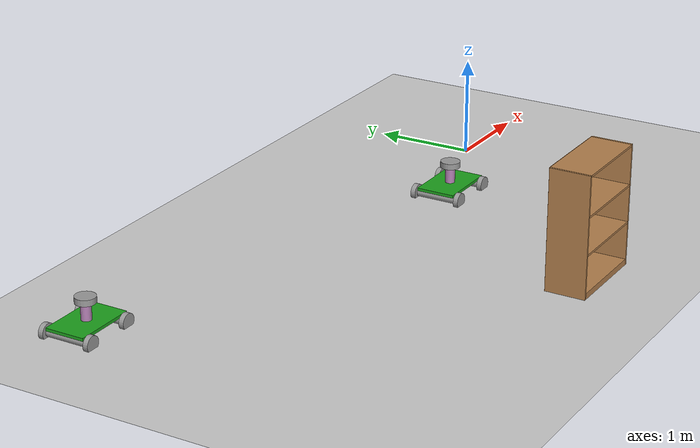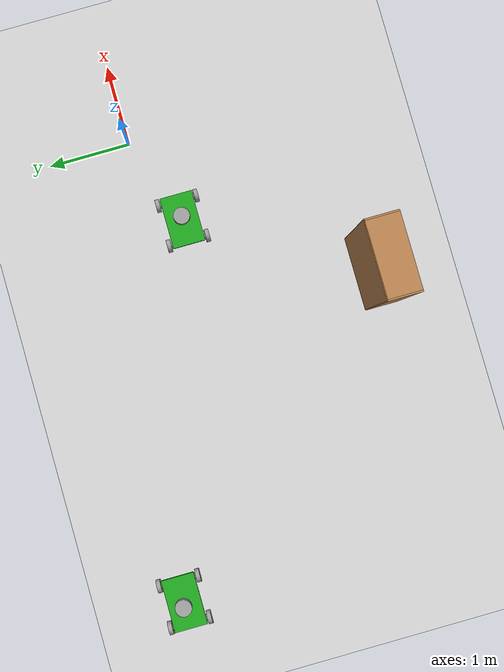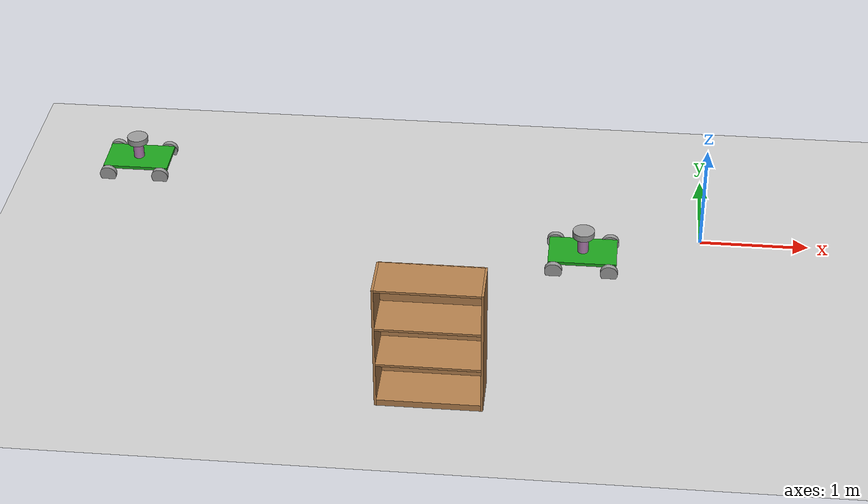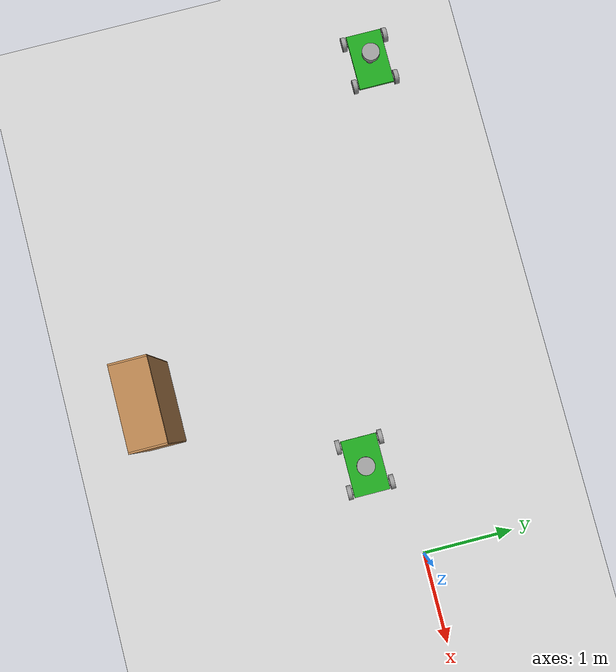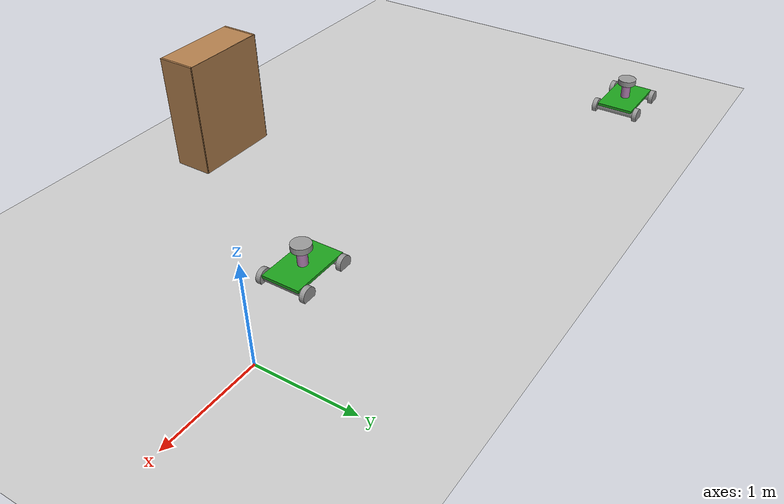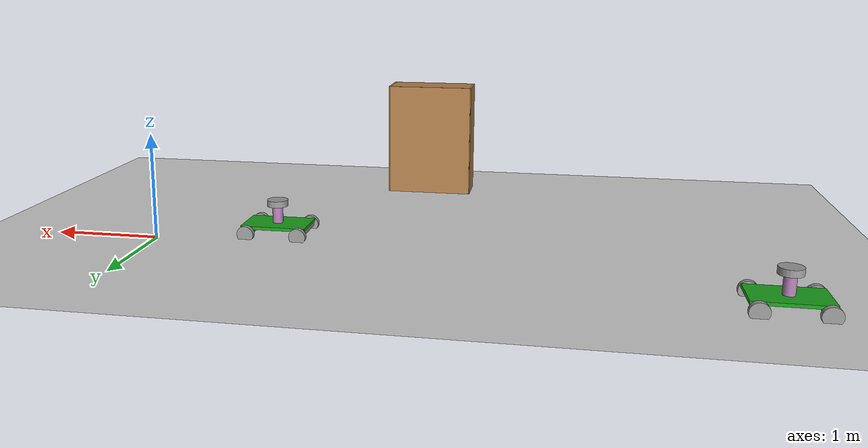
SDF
<sdf version="1.6">
 <world name="KoWorld">
  <model name="ground_plane">
   <static>1</static>
   <link name="link">
    <collision name="collision">
     <geometry><plane><normal>0 0 1</normal><size>100 100</size></plane></geometry>
     <surface>
      <contact><collide_bitmask>65535</collide_bitmask></contact>
      <friction><ode><mu>100</mu><mu2>50</mu2></ode></friction>
     </surface>
    </collision>
    <visual name="visual">
     <cast_shadows>0</cast_shadows>
     <geometry><plane><normal>0 0 1</normal><size>100 100</size></plane></geometry>
     <material>
      <script><uri>file://media/materials/scripts/gazebo.material</uri><name>Gazebo/Grey</name></script>
     </material>
    </visual>
   </link>
  </model>
  <model name="Akkobot">
   <link name="link_1">
    <inertial>
     <mass>1</mass>
     <inertia>
      <ixx>0.166667</ixx>
      <ixy>0</ixy>
      <ixz>0</ixz>
      <iyy>0.166667</iyy>
      <iyz>0</iyz>
      <izz>0.166667</izz>
     </inertia>
    </inertial>
    <pose>0.01 1e-06 -0.194167 0 -0 0</pose>
    <visual name="visual">
     <geometry><box><size>0.63 0.4 0.03</size></box></geometry>
     <material>
      <lighting>1</lighting>
      <script><uri>file://media/materials/scripts/gazebo.material</uri><name>Gazebo/Grey</name></script>
      <shader type="pixel"><normal_map>__default__</normal_map></shader>
      <ambient>0.3 0.3 0.3 1</ambient>
      <diffuse>0.11 0.63 0.11 1</diffuse>
      <specular>0.01 0.01 0.01 1</specular>
      <emissive>0 0 0 1</emissive>
     </material>
    </visual>
    <visual name="ModelPreview_0::link_1::visual_1">
     <pose>0 0 0.098 0 -0 0</pose>
     <geometry><cylinder><radius>0.05</radius><length>0.17</length></cylinder></geometry>
     <material>
      <lighting>1</lighting>
      <script><uri>file://media/materials/scripts/gazebo.material</uri><name>Gazebo/Grey</name></script>
      <shader type="pixel"><normal_map>__default__</normal_map></shader>
      <ambient>0.3 0.3 0.3 1</ambient>
      <diffuse>0.7 0.5 0.7 1</diffuse>
      <specular>0.01 0.01 0.01 1</specular>
      <emissive>0 0 0 1</emissive>
     </material>
    </visual>
    <visual name="ModelPreview_0::link_1::visual_3">
     <pose>0 0 0.21 0 -0 0</pose>
     <geometry><cylinder><radius>0.1</radius><length>0.06</length></cylinder></geometry>
     <material>
      <lighting>1</lighting>
      <script><uri>file://media/materials/scripts/gazebo.material</uri><name>Gazebo/Grey</name></script>
      <shader type="pixel"><normal_map>__default__</normal_map></shader>
      <ambient>0.3 0.3 0.3 1</ambient>
      <diffuse>0.18 0.18 0.18 1</diffuse>
      <specular>0.01 0.01 0.01 1</specular>
      <emissive>0 0 0 1</emissive>
     </material>
    </visual>
    <collision name="collision">
     <geometry><box><size>0.65 0.4 0.03</size></box></geometry>
     <surface>
      <friction>
       <ode><mu>1</mu><mu2>1</mu2><fdir1>0 0 0</fdir1><slip1>0</slip1><slip2>0</slip2></ode>
       <torsional>
        <coefficient>1</coefficient>
        <patch_radius>0</patch_radius>
        <surface_radius>0</surface_radius>
        <use_patch_radius>1</use_patch_radius>
        <ode><slip>0</slip></ode>
       </torsional>
      </friction>
      <bounce><restitution_coefficient>0</restitution_coefficient><threshold>1e+06</threshold></bounce>
      <contact>
       <collide_without_contact>0</collide_without_contact>
       <collide_without_contact_bitmask>1</collide_without_contact_bitmask>
       <collide_bitmask>1</collide_bitmask>
       <ode>
        <soft_cfm>0</soft_cfm>
        <soft_erp>0.2</soft_erp>
        <kp>1e+13</kp>
        <kd>1</kd>
        <max_vel>0.01</max_vel>
        <min_depth>0</min_depth>
       </ode>
       <bullet>
        <split_impulse>1</split_impulse>
        <split_impulse_penetration_threshold>-0.01</split_impulse_penetration_threshold>
        <soft_cfm>0</soft_cfm>
        <soft_erp>0.2</soft_erp>
        <kp>1e+13</kp>
        <kd>1</kd>
       </bullet>
      </contact>
     </surface>
    </collision>
   </link>
   <link name="link_2">
    <inertial>
     <mass>1</mass>
     <inertia><ixx>0.145833</ixx><ixy>0</ixy><ixz>0</ixz><iyy>0.145833</iyy><iyz>0</iyz><izz>0.125</izz></inertia>
    </inertial>
    <pose>-0.25 1e-06 -0.244167 1.5707 -0 0</pose>
    <visual name="ModelPreview_0::link_2::visual_1">
     <pose>0 0 0.24 0 -0 0</pose>
     <geometry><cylinder><radius>0.08</radius><length>0.05</length></cylinder></geometry>
     <material>
      <lighting>1</lighting>
      <script><uri>file://media/materials/scripts/gazebo.material</uri><name>Gazebo/Grey</name></script>
      <shader type="pixel"><normal_map>__default__</normal_map></shader>
      <ambient>0.3 0.3 0.3 1</ambient>
      <diffuse>0.18 0.18 0.18 1</diffuse>
      <specular>0.01 0.01 0.01 1</specular>
      <emissive>0 0 0 1</emissive>
     </material>
    </visual>
    <visual name="ModelPreview_0::link_2::visual_2">
     <pose>0 0 -0.24 0 -0 0</pose>
     <geometry><cylinder><radius>0.08</radius><length>0.05</length></cylinder></geometry>
     <material>
      <lighting>1</lighting>
      <script><uri>file://media/materials/scripts/gazebo.material</uri><name>Gazebo/Grey</name></script>
      <shader type="pixel"><normal_map>__default__</normal_map></shader>
      <ambient>0.3 0.3 0.3 1</ambient>
      <diffuse>0.18 0.18 0.18 1</diffuse>
      <specular>0.01 0.01 0.01 1</specular>
      <emissive>0 0 0 1</emissive>
     </material>
    </visual>
    <visual name="visual">
     <geometry><cylinder><radius>0.04</radius><length>0.44</length></cylinder></geometry>
     <material>
      <lighting>1</lighting>
      <script><uri>file://media/materials/scripts/gazebo.material</uri><name>Gazebo/Grey</name></script>
      <shader type="pixel"><normal_map>__default__</normal_map></shader>
      <ambient>0.3 0.3 0.3 1</ambient>
      <diffuse>0.07 0.03 0.07 1</diffuse>
      <specular>0.01 0.01 0.01 1</specular>
      <emissive>0 0 0 1</emissive>
     </material>
    </visual>
    <collision name="collision">
     <geometry><cylinder><radius>0.04</radius><length>0.44</length></cylinder></geometry>
     <surface>
      <friction>
       <ode><mu>1</mu><mu2>1</mu2><fdir1>0 0 0</fdir1><slip1>0</slip1><slip2>0</slip2></ode>
       <torsional>
        <coefficient>1</coefficient>
        <patch_radius>0</patch_radius>
        <surface_radius>0</surface_radius>
        <use_patch_radius>1</use_patch_radius>
        <ode><slip>0</slip></ode>
       </torsional>
      </friction>
      <bounce><restitution_coefficient>0</restitution_coefficient><threshold>1e+06</threshold></bounce>
      <contact>
       <collide_without_contact>0</collide_without_contact>
       <collide_without_contact_bitmask>1</collide_without_contact_bitmask>
       <collide_bitmask>1</collide_bitmask>
       <ode>
        <soft_cfm>0</soft_cfm>
        <soft_erp>0.2</soft_erp>
        <kp>1e+13</kp>
        <kd>1</kd>
        <max_vel>0.01</max_vel>
        <min_depth>0</min_depth>
       </ode>
       <bullet>
        <split_impulse>1</split_impulse>
        <split_impulse_penetration_threshold>-0.01</split_impulse_penetration_threshold>
        <soft_cfm>0</soft_cfm>
        <soft_erp>0.2</soft_erp>
        <kp>1e+13</kp>
        <kd>1</kd>
       </bullet>
      </contact>
     </surface>
    </collision>
   </link>
   <link name="link_2_clone">
    <inertial>
     <mass>1</mass>
     <inertia><ixx>0.145833</ixx><ixy>0</ixy><ixz>0</ixz><iyy>0.145833</iyy><iyz>0</iyz><izz>0.125</izz></inertia>
    </inertial>
    <pose>0.26 1e-06 -0.244167 1.5707 -0 0</pose>
    <visual name="visual_1">
     <pose>0 0 0.24 0 -0 0</pose>
     <geometry><cylinder><radius>0.08</radius><length>0.05</length></cylinder></geometry>
     <material>
      <lighting>1</lighting>
      <script><uri>file://media/materials/scripts/gazebo.material</uri><name>Gazebo/Grey</name></script>
      <shader type="pixel"><normal_map>__default__</normal_map></shader>
      <ambient>0.3 0.3 0.3 1</ambient>
      <diffuse>0.18 0.18 0.18 1</diffuse>
      <specular>0.01 0.01 0.01 1</specular>
      <emissive>0 0 0 1</emissive>
     </material>
    </visual>
    <visual name="visual_2">
     <pose>0 0 -0.24 0 -0 0</pose>
     <geometry><cylinder><radius>0.08</radius><length>0.05</length></cylinder></geometry>
     <material>
      <lighting>1</lighting>
      <script><uri>file://media/materials/scripts/gazebo.material</uri><name>Gazebo/Grey</name></script>
      <shader type="pixel"><normal_map>__default__</normal_map></shader>
      <ambient>0.3 0.3 0.3 1</ambient>
      <diffuse>0.18 0.18 0.18 1</diffuse>
      <specular>0.01 0.01 0.01 1</specular>
      <emissive>0 0 0 1</emissive>
     </material>
    </visual>
    <visual name="visual">
     <geometry><cylinder><radius>0.04</radius><length>0.44</length></cylinder></geometry>
     <material>
      <lighting>1</lighting>
      <script><uri>file://media/materials/scripts/gazebo.material</uri><name>Gazebo/Grey</name></script>
      <shader type="pixel"><normal_map>__default__</normal_map></shader>
      <ambient>0.3 0.3 0.3 1</ambient>
      <diffuse>0.07 0.03 0.07 1</diffuse>
      <specular>0.01 0.01 0.01 1</specular>
      <emissive>0 0 0 1</emissive>
     </material>
    </visual>
    <collision name="collision">
     <geometry><cylinder><radius>0.04</radius><length>0.44</length></cylinder></geometry>
     <surface>
      <friction>
       <ode><mu>1</mu><mu2>1</mu2><fdir1>0 0 0</fdir1><slip1>0</slip1><slip2>0</slip2></ode>
       <torsional>
        <coefficient>1</coefficient>
        <patch_radius>0</patch_radius>
        <surface_radius>0</surface_radius>
        <use_patch_radius>1</use_patch_radius>
        <ode><slip>0</slip></ode>
       </torsional>
      </friction>
      <bounce><restitution_coefficient>0</restitution_coefficient><threshold>1e+06</threshold></bounce>
      <contact>
       <collide_without_contact>0</collide_without_contact>
       <collide_without_contact_bitmask>1</collide_without_contact_bitmask>
       <collide_bitmask>1</collide_bitmask>
       <ode>
        <soft_cfm>0</soft_cfm>
        <soft_erp>0.2</soft_erp>
        <kp>1e+13</kp>
        <kd>1</kd>
        <max_vel>0.01</max_vel>
        <min_depth>0</min_depth>
       </ode>
       <bullet>
        <split_impulse>1</split_impulse>
        <split_impulse_penetration_threshold>-0.01</split_impulse_penetration_threshold>
        <soft_cfm>0</soft_cfm>
        <soft_erp>0.2</soft_erp>
        <kp>1e+13</kp>
        <kd>1</kd>
       </bullet>
      </contact>
     </surface>
    </collision>
   </link>
   <joint name="link_1_JOINT_0" type="revolute">
    <parent>link_1</parent>
    <child>link_2</child>
    <axis>
     <xyz>0 0 1</xyz>
     <limit>
      <lower>-1.79769e+308</lower>
      <upper>1.79769e+308</upper>
      <effort>-1</effort>
      <velocity>-1</velocity>
     </limit>
     <dynamics>
      <spring_reference>0</spring_reference>
      <spring_stiffness>0</spring_stiffness>
      <damping>0</damping>
      <friction>0</friction>
     </dynamics>
    </axis>
    <physics>
     <ode><limit><cfm>0</cfm><erp>0.2</erp></limit><suspension><cfm>0</cfm><erp>0.2</erp></suspension></ode>
    </physics>
   </joint>
   <joint name="link_1_JOINT_1" type="revolute">
    <parent>link_1</parent>
    <child>link_2_clone</child>
    <axis>
     <xyz>0 0 1</xyz>
     <limit>
      <lower>-1.79769e+308</lower>
      <upper>1.79769e+308</upper>
      <effort>-1</effort>
      <velocity>-1</velocity>
     </limit>
     <dynamics>
      <spring_reference>0</spring_reference>
      <spring_stiffness>0</spring_stiffness>
      <damping>0</damping>
     </dynamics>
    </axis>
    <physics>
     <ode><limit><cfm>0</cfm><erp>0.2</erp></limit><suspension><cfm>0</cfm><erp>0.2</erp></suspension></ode>
    </physics>
   </joint>
   <static>0</static>
   <pose>-1.09811 -0.38138 0.284167 9.6e-05 -0 5e-05</pose>
  </model>
  <model name="Akkobot_clone">
   <link name="link_1">
    <inertial>
     <mass>1</mass>
     <inertia>
      <ixx>0.166667</ixx>
      <ixy>0</ixy>
      <ixz>0</ixz>
      <iyy>0.166667</iyy>
      <iyz>0</iyz>
      <izz>0.166667</izz>
     </inertia>
    </inertial>
    <pose>0.01 1e-06 -0.194167 0 -0 0</pose>
    <visual name="visual">
     <geometry><box><size>0.63 0.4 0.03</size></box></geometry>
     <material>
      <lighting>1</lighting>
      <script><uri>file://media/materials/scripts/gazebo.material</uri><name>Gazebo/Grey</name></script>
      <shader type="pixel"><normal_map>__default__</normal_map></shader>
      <ambient>0.3 0.3 0.3 1</ambient>
      <diffuse>0.11 0.63 0.11 1</diffuse>
      <specular>0.01 0.01 0.01 1</specular>
      <emissive>0 0 0 1</emissive>
     </material>
    </visual>
    <visual name="ModelPreview_0::link_1::visual_1">
     <pose>0 0 0.098 0 -0 0</pose>
     <geometry><cylinder><radius>0.05</radius><length>0.17</length></cylinder></geometry>
     <material>
      <lighting>1</lighting>
      <script><uri>file://media/materials/scripts/gazebo.material</uri><name>Gazebo/Grey</name></script>
      <shader type="pixel"><normal_map>__default__</normal_map></shader>
      <ambient>0.3 0.3 0.3 1</ambient>
      <diffuse>0.7 0.5 0.7 1</diffuse>
      <specular>0.01 0.01 0.01 1</specular>
      <emissive>0 0 0 1</emissive>
     </material>
    </visual>
    <visual name="ModelPreview_0::link_1::visual_3">
     <pose>0 0 0.21 0 -0 0</pose>
     <geometry><cylinder><radius>0.1</radius><length>0.06</length></cylinder></geometry>
     <material>
      <lighting>1</lighting>
      <script><uri>file://media/materials/scripts/gazebo.material</uri><name>Gazebo/Grey</name></script>
      <shader type="pixel"><normal_map>__default__</normal_map></shader>
      <ambient>0.3 0.3 0.3 1</ambient>
      <diffuse>0.18 0.18 0.18 1</diffuse>
      <specular>0.01 0.01 0.01 1</specular>
      <emissive>0 0 0 1</emissive>
     </material>
    </visual>
    <collision name="collision">
     <geometry><box><size>0.65 0.4 0.03</size></box></geometry>
     <surface>
      <friction>
       <ode><mu>1</mu><mu2>1</mu2><fdir1>0 0 0</fdir1><slip1>0</slip1><slip2>0</slip2></ode>
       <torsional>
        <coefficient>1</coefficient>
        <patch_radius>0</patch_radius>
        <surface_radius>0</surface_radius>
        <use_patch_radius>1</use_patch_radius>
        <ode><slip>0</slip></ode>
       </torsional>
      </friction>
      <bounce><restitution_coefficient>0</restitution_coefficient><threshold>1e+06</threshold></bounce>
      <contact>
       <collide_without_contact>0</collide_without_contact>
       <collide_without_contact_bitmask>1</collide_without_contact_bitmask>
       <collide_bitmask>1</collide_bitmask>
       <ode>
        <soft_cfm>0</soft_cfm>
        <soft_erp>0.2</soft_erp>
        <kp>1e+13</kp>
        <kd>1</kd>
        <max_vel>0.01</max_vel>
        <min_depth>0</min_depth>
       </ode>
       <bullet>
        <split_impulse>1</split_impulse>
        <split_impulse_penetration_threshold>-0.01</split_impulse_penetration_threshold>
        <soft_cfm>0</soft_cfm>
        <soft_erp>0.2</soft_erp>
        <kp>1e+13</kp>
        <kd>1</kd>
       </bullet>
      </contact>
     </surface>
    </collision>
   </link>
   <link name="link_2">
    <inertial>
     <mass>1</mass>
     <inertia><ixx>0.145833</ixx><ixy>0</ixy><ixz>0</ixz><iyy>0.145833</iyy><iyz>0</iyz><izz>0.125</izz></inertia>
    </inertial>
    <pose>-0.25 1e-06 -0.244167 1.5707 -0 0</pose>
    <visual name="ModelPreview_0::link_2::visual_1">
     <pose>0 0 0.24 0 -0 0</pose>
     <geometry><cylinder><radius>0.08</radius><length>0.05</length></cylinder></geometry>
     <material>
      <lighting>1</lighting>
      <script><uri>file://media/materials/scripts/gazebo.material</uri><name>Gazebo/Grey</name></script>
      <shader type="pixel"><normal_map>__default__</normal_map></shader>
      <ambient>0.3 0.3 0.3 1</ambient>
      <diffuse>0.18 0.18 0.18 1</diffuse>
      <specular>0.01 0.01 0.01 1</specular>
      <emissive>0 0 0 1</emissive>
     </material>
    </visual>
    <visual name="ModelPreview_0::link_2::visual_2">
     <pose>0 0 -0.24 0 -0 0</pose>
     <geometry><cylinder><radius>0.08</radius><length>0.05</length></cylinder></geometry>
     <material>
      <lighting>1</lighting>
      <script><uri>file://media/materials/scripts/gazebo.material</uri><name>Gazebo/Grey</name></script>
      <shader type="pixel"><normal_map>__default__</normal_map></shader>
      <ambient>0.3 0.3 0.3 1</ambient>
      <diffuse>0.18 0.18 0.18 1</diffuse>
      <specular>0.01 0.01 0.01 1</specular>
      <emissive>0 0 0 1</emissive>
     </material>
    </visual>
    <visual name="visual">
     <geometry><cylinder><radius>0.04</radius><length>0.44</length></cylinder></geometry>
     <material>
      <lighting>1</lighting>
      <script><uri>file://media/materials/scripts/gazebo.material</uri><name>Gazebo/Grey</name></script>
      <shader type="pixel"><normal_map>__default__</normal_map></shader>
      <ambient>0.3 0.3 0.3 1</ambient>
      <diffuse>0.07 0.03 0.07 1</diffuse>
      <specular>0.01 0.01 0.01 1</specular>
      <emissive>0 0 0 1</emissive>
     </material>
    </visual>
    <collision name="collision">
     <geometry><cylinder><radius>0.04</radius><length>0.44</length></cylinder></geometry>
     <surface>
      <friction>
       <ode><mu>1</mu><mu2>1</mu2><fdir1>0 0 0</fdir1><slip1>0</slip1><slip2>0</slip2></ode>
       <torsional>
        <coefficient>1</coefficient>
        <patch_radius>0</patch_radius>
        <surface_radius>0</surface_radius>
        <use_patch_radius>1</use_patch_radius>
        <ode><slip>0</slip></ode>
       </torsional>
      </friction>
      <bounce><restitution_coefficient>0</restitution_coefficient><threshold>1e+06</threshold></bounce>
      <contact>
       <collide_without_contact>0</collide_without_contact>
       <collide_without_contact_bitmask>1</collide_without_contact_bitmask>
       <collide_bitmask>1</collide_bitmask>
       <ode>
        <soft_cfm>0</soft_cfm>
        <soft_erp>0.2</soft_erp>
        <kp>1e+13</kp>
        <kd>1</kd>
        <max_vel>0.01</max_vel>
        <min_depth>0</min_depth>
       </ode>
       <bullet>
        <split_impulse>1</split_impulse>
        <split_impulse_penetration_threshold>-0.01</split_impulse_penetration_threshold>
        <soft_cfm>0</soft_cfm>
        <soft_erp>0.2</soft_erp>
        <kp>1e+13</kp>
        <kd>1</kd>
       </bullet>
      </contact>
     </surface>
    </collision>
   </link>
   <link name="link_2_clone">
    <inertial>
     <mass>1</mass>
     <inertia><ixx>0.145833</ixx><ixy>0</ixy><ixz>0</ixz><iyy>0.145833</iyy><iyz>0</iyz><izz>0.125</izz></inertia>
    </inertial>
    <pose>0.26 1e-06 -0.244167 1.5707 -0 0</pose>
    <visual name="visual_1">
     <pose>0 0 0.24 0 -0 0</pose>
     <geometry><cylinder><radius>0.08</radius><length>0.05</length></cylinder></geometry>
     <material>
      <lighting>1</lighting>
      <script><uri>file://media/materials/scripts/gazebo.material</uri><name>Gazebo/Grey</name></script>
      <shader type="pixel"><normal_map>__default__</normal_map></shader>
      <ambient>0.3 0.3 0.3 1</ambient>
      <diffuse>0.18 0.18 0.18 1</diffuse>
      <specular>0.01 0.01 0.01 1</specular>
      <emissive>0 0 0 1</emissive>
     </material>
    </visual>
    <visual name="visual_2">
     <pose>0 0 -0.24 0 -0 0</pose>
     <geometry><cylinder><radius>0.08</radius><length>0.05</length></cylinder></geometry>
     <material>
      <lighting>1</lighting>
      <script><uri>file://media/materials/scripts/gazebo.material</uri><name>Gazebo/Grey</name></script>
      <shader type="pixel"><normal_map>__default__</normal_map></shader>
      <ambient>0.3 0.3 0.3 1</ambient>
      <diffuse>0.18 0.18 0.18 1</diffuse>
      <specular>0.01 0.01 0.01 1</specular>
      <emissive>0 0 0 1</emissive>
     </material>
    </visual>
    <visual name="visual">
     <geometry><cylinder><radius>0.04</radius><length>0.44</length></cylinder></geometry>
     <material>
      <lighting>1</lighting>
      <script><uri>file://media/materials/scripts/gazebo.material</uri><name>Gazebo/Grey</name></script>
      <shader type="pixel"><normal_map>__default__</normal_map></shader>
      <ambient>0.3 0.3 0.3 1</ambient>
      <diffuse>0.07 0.03 0.07 1</diffuse>
      <specular>0.01 0.01 0.01 1</specular>
      <emissive>0 0 0 1</emissive>
     </material>
    </visual>
    <collision name="collision">
     <geometry><cylinder><radius>0.04</radius><length>0.44</length></cylinder></geometry>
     <surface>
      <friction>
       <ode><mu>1</mu><mu2>1</mu2><fdir1>0 0 0</fdir1><slip1>0</slip1><slip2>0</slip2></ode>
       <torsional>
        <coefficient>1</coefficient>
        <patch_radius>0</patch_radius>
        <surface_radius>0</surface_radius>
        <use_patch_radius>1</use_patch_radius>
        <ode><slip>0</slip></ode>
       </torsional>
      </friction>
      <bounce><restitution_coefficient>0</restitution_coefficient><threshold>1e+06</threshold></bounce>
      <contact>
       <collide_without_contact>0</collide_without_contact>
       <collide_without_contact_bitmask>1</collide_without_contact_bitmask>
       <collide_bitmask>1</collide_bitmask>
       <ode>
        <soft_cfm>0</soft_cfm>
        <soft_erp>0.2</soft_erp>
        <kp>1e+13</kp>
        <kd>1</kd>
        <max_vel>0.01</max_vel>
        <min_depth>0</min_depth>
       </ode>
       <bullet>
        <split_impulse>1</split_impulse>
        <split_impulse_penetration_threshold>-0.01</split_impulse_penetration_threshold>
        <soft_cfm>0</soft_cfm>
        <soft_erp>0.2</soft_erp>
        <kp>1e+13</kp>
        <kd>1</kd>
       </bullet>
      </contact>
     </surface>
    </collision>
   </link>
   <joint name="link_1_JOINT_0" type="revolute">
    <parent>link_1</parent>
    <child>link_2</child>
    <axis>
     <xyz>0 0 1</xyz>
     <limit>
      <lower>-1.79769e+308</lower>
      <upper>1.79769e+308</upper>
      <effort>-1</effort>
      <velocity>-1</velocity>
     </limit>
     <dynamics>
      <spring_reference>0</spring_reference>
      <spring_stiffness>0</spring_stiffness>
      <damping>0</damping>
      <friction>0</friction>
     </dynamics>
    </axis>
    <physics>
     <ode><limit><cfm>0</cfm><erp>0.2</erp></limit><suspension><cfm>0</cfm><erp>0.2</erp></suspension></ode>
    </physics>
   </joint>
   <joint name="link_1_JOINT_1" type="revolute">
    <parent>link_1</parent>
    <child>link_2_clone</child>
    <axis>
     <xyz>0 0 1</xyz>
     <limit>
      <lower>-1.79769e+308</lower>
      <upper>1.79769e+308</upper>
      <effort>-1</effort>
      <velocity>-1</velocity>
     </limit>
     <dynamics>
      <spring_reference>0</spring_reference>
      <spring_stiffness>0</spring_stiffness>
      <damping>0</damping>
     </dynamics>
    </axis>
    <physics>
     <ode><limit><cfm>0</cfm><erp>0.2</erp></limit><suspension><cfm>0</cfm><erp>0.2</erp></suspension></ode>
    </physics>
   </joint>
   <static>0</static>
   <pose>-5.51802 0.834751 0.284167 9.6e-05 -0 5e-05</pose>
  </model>
  <model name="bookshelf">
   <static>1</static>
   <link name="link">
    <inertial><mass>1</mass></inertial>
    <collision name="back">
     <pose>0 0.005 0.6 0 -0 0</pose>
     <geometry><box><size>0.9 0.01 1.2</size></box></geometry>
    </collision>
    <visual name="visual1">
     <pose>0 0.005 0.6 0 -0 0</pose>
     <geometry><box><size>0.9 0.01 1.2</size></box></geometry>
     <material>
      <script><uri>file://media/materials/scripts/gazebo.material</uri><name>Gazebo/Wood</name></script>
     </material>
    </visual>
    <collision name="left_side">
     <pose>0.45 -0.195 0.6 0 -0 0</pose>
     <geometry><box><size>0.02 0.4 1.2</size></box></geometry>
    </collision>
    <visual name="visual2">
     <pose>0.45 -0.195 0.6 0 -0 0</pose>
     <geometry><box><size>0.02 0.4 1.2</size></box></geometry>
     <material>
      <script><uri>file://media/materials/scripts/gazebo.material</uri><name>Gazebo/Wood</name></script>
     </material>
    </visual>
    <collision name="right_side">
     <pose>-0.45 -0.195 0.6 0 -0 0</pose>
     <geometry><box><size>0.02 0.4 1.2</size></box></geometry>
    </collision>
    <visual name="visual3">
     <pose>-0.45 -0.195 0.6 0 -0 0</pose>
     <geometry><box><size>0.02 0.4 1.2</size></box></geometry>
     <material>
      <script><uri>file://media/materials/scripts/gazebo.material</uri><name>Gazebo/Wood</name></script>
     </material>
    </visual>
    <collision name="bottom">
     <pose>0 -0.195 0.03 0 -0 0</pose>
     <geometry><box><size>0.88 0.4 0.06</size></box></geometry>
    </collision>
    <visual name="visual4">
     <pose>0 -0.195 0.03 0 -0 0</pose>
     <geometry><box><size>0.88 0.4 0.06</size></box></geometry>
     <material>
      <script><uri>file://media/materials/scripts/gazebo.material</uri><name>Gazebo/Wood</name></script>
     </material>
    </visual>
    <collision name="top">
     <pose>0 -0.195 1.19 0 -0 0</pose>
     <geometry><box><size>0.88 0.4 0.02</size></box></geometry>
    </collision>
    <visual name="visual5">
     <pose>0 -0.195 1.19 0 -0 0</pose>
     <geometry><box><size>0.88 0.4 0.02</size></box></geometry>
     <material>
      <script><uri>file://media/materials/scripts/gazebo.material</uri><name>Gazebo/Wood</name></script>
     </material>
    </visual>
    <collision name="low_shelf">
     <pose>0 -0.195 0.43 0 -0 0</pose>
     <geometry><box><size>0.88 0.4 0.02</size></box></geometry>
    </collision>
    <visual name="visual6">
     <pose>0 -0.195 0.43 0 -0 0</pose>
     <geometry><box><size>0.88 0.4 0.02</size></box></geometry>
     <material>
      <script><uri>file://media/materials/scripts/gazebo.material</uri><name>Gazebo/Wood</name></script>
     </material>
    </visual>
    <collision name="high_shelf">
     <pose>0 -0.195 0.8 0 -0 0</pose>
     <geometry><box><size>0.88 0.4 0.02</size></box></geometry>
    </collision>
    <visual name="visual7">
     <pose>0 -0.195 0.8 0 -0 0</pose>
     <geometry><box><size>0.88 0.4 0.02</size></box></geometry>
     <material>
      <script><uri>file://media/materials/scripts/gazebo.material</uri><name>Gazebo/Wood</name></script>
     </material>
    </visual>
   </link>
   <pose>-2.29115 -2.23818 0 0 -0 0</pose>
  </model>
 </world>
</sdf>
